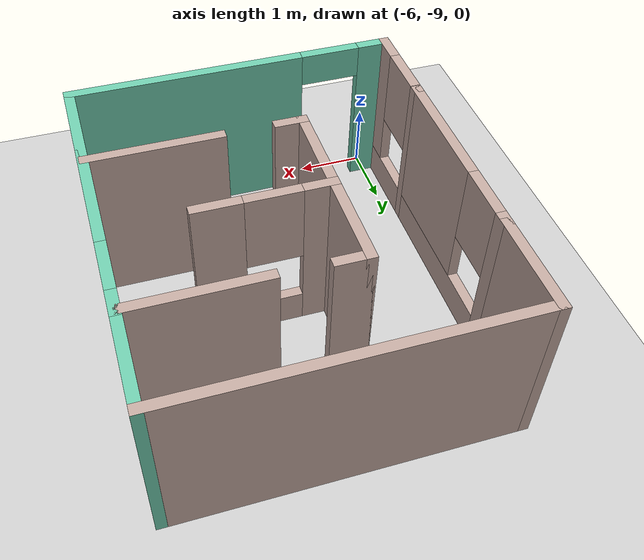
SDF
<sdf version="1.7">
 <world name="default">
  <model name="my_house">
   <link name="Wall_25">
    <pose>-3.07678 0.513938 0 0 -0 1.5708</pose>
    <visual name="Wall_25_Visual">
     <pose>0 0 1.25 0 -0 0</pose>
     <geometry><box><size>1.52313 0.15 2.5</size></box></geometry>
     <material>
      <script><uri>file://media/materials/scripts/gazebo.material</uri><name>Gazebo/Grey</name></script>
      <ambient>0.760784 0.662745 0.627451 1</ambient>
      <shader type="pixel"/>
     </material>
     <meta><layer>0</layer></meta>
    </visual>
    <collision name="Wall_25_Collision">
     <pose>0 0 1.25 0 -0 0</pose>
     <geometry><box><size>1.52313 0.15 2.5</size></box></geometry>
     <surface>
      <friction>
       <ode><mu>1</mu><mu2>1</mu2><fdir1>0 0 0</fdir1><slip1>0</slip1><slip2>0</slip2></ode>
       <torsional>
        <coefficient>1</coefficient>
        <patch_radius>0</patch_radius>
        <surface_radius>0</surface_radius>
        <use_patch_radius>1</use_patch_radius>
        <ode><slip>0</slip></ode>
       </torsional>
      </friction>
      <bounce><restitution_coefficient>0</restitution_coefficient><threshold>1e+06</threshold></bounce>
      <contact>
       <collide_without_contact>0</collide_without_contact>
       <collide_without_contact_bitmask>1</collide_without_contact_bitmask>
       <collide_bitmask>1</collide_bitmask>
       <ode>
        <soft_cfm>0</soft_cfm>
        <soft_erp>0.2</soft_erp>
        <kp>1e+13</kp>
        <kd>1</kd>
        <max_vel>0.01</max_vel>
        <min_depth>0</min_depth>
       </ode>
       <bullet>
        <split_impulse>1</split_impulse>
        <split_impulse_penetration_threshold>-0.01</split_impulse_penetration_threshold>
        <soft_cfm>0</soft_cfm>
        <soft_erp>0.2</soft_erp>
        <kp>1e+13</kp>
        <kd>1</kd>
       </bullet>
      </contact>
     </surface>
    </collision>
   </link>
   <link name="Wall_26">
    <pose>-0.651784 1.2005 0 0 -0 0</pose>
    <visual name="Wall_26_Visual">
     <pose>0 0 1.25 0 -0 0</pose>
     <geometry><box><size>5 0.15 2.5</size></box></geometry>
     <material>
      <script><uri>file://media/materials/scripts/gazebo.material</uri><name>Gazebo/Grey</name></script>
      <ambient>0.760784 0.662745 0.627451 1</ambient>
      <shader type="pixel"/>
     </material>
     <meta><layer>0</layer></meta>
    </visual>
    <collision name="Wall_26_Collision">
     <pose>0 0 1.25 0 -0 0</pose>
     <geometry><box><size>5 0.15 2.5</size></box></geometry>
     <surface>
      <friction>
       <ode><mu>1</mu><mu2>1</mu2><fdir1>0 0 0</fdir1><slip1>0</slip1><slip2>0</slip2></ode>
       <torsional>
        <coefficient>1</coefficient>
        <patch_radius>0</patch_radius>
        <surface_radius>0</surface_radius>
        <use_patch_radius>1</use_patch_radius>
        <ode><slip>0</slip></ode>
       </torsional>
      </friction>
      <bounce><restitution_coefficient>0</restitution_coefficient><threshold>1e+06</threshold></bounce>
      <contact>
       <collide_without_contact>0</collide_without_contact>
       <collide_without_contact_bitmask>1</collide_without_contact_bitmask>
       <collide_bitmask>1</collide_bitmask>
       <ode>
        <soft_cfm>0</soft_cfm>
        <soft_erp>0.2</soft_erp>
        <kp>1e+13</kp>
        <kd>1</kd>
        <max_vel>0.01</max_vel>
        <min_depth>0</min_depth>
       </ode>
       <bullet>
        <split_impulse>1</split_impulse>
        <split_impulse_penetration_threshold>-0.01</split_impulse_penetration_threshold>
        <soft_cfm>0</soft_cfm>
        <soft_erp>0.2</soft_erp>
        <kp>1e+13</kp>
        <kd>1</kd>
       </bullet>
      </contact>
     </surface>
    </collision>
   </link>
   <link name="Wall_27">
    <pose>1.77322 0.525503 0 0 0 -1.5708</pose>
    <visual name="Wall_27_Visual">
     <pose>0 0 1.25 0 -0 0</pose>
     <geometry><box><size>1.5 0.15 2.5</size></box></geometry>
     <material>
      <script><uri>file://media/materials/scripts/gazebo.material</uri><name>Gazebo/Grey</name></script>
      <ambient>0.435294 0.796078 0.67451 1</ambient>
      <shader type="pixel"/>
     </material>
     <meta><layer>0</layer></meta>
    </visual>
    <collision name="Wall_27_Collision">
     <pose>0 0 1.25 0 -0 0</pose>
     <geometry><box><size>1.5 0.15 2.5</size></box></geometry>
     <surface>
      <friction>
       <ode><mu>1</mu><mu2>1</mu2><fdir1>0 0 0</fdir1><slip1>0</slip1><slip2>0</slip2></ode>
       <torsional>
        <coefficient>1</coefficient>
        <patch_radius>0</patch_radius>
        <surface_radius>0</surface_radius>
        <use_patch_radius>1</use_patch_radius>
        <ode><slip>0</slip></ode>
       </torsional>
      </friction>
      <bounce><restitution_coefficient>0</restitution_coefficient><threshold>1e+06</threshold></bounce>
      <contact>
       <collide_without_contact>0</collide_without_contact>
       <collide_without_contact_bitmask>1</collide_without_contact_bitmask>
       <collide_bitmask>1</collide_bitmask>
       <ode>
        <soft_cfm>0</soft_cfm>
        <soft_erp>0.2</soft_erp>
        <kp>1e+13</kp>
        <kd>1</kd>
        <max_vel>0.01</max_vel>
        <min_depth>0</min_depth>
       </ode>
       <bullet>
        <split_impulse>1</split_impulse>
        <split_impulse_penetration_threshold>-0.01</split_impulse_penetration_threshold>
        <soft_cfm>0</soft_cfm>
        <soft_erp>0.2</soft_erp>
        <kp>1e+13</kp>
        <kd>1</kd>
       </bullet>
      </contact>
     </surface>
    </collision>
   </link>
   <link name="Wall_28">
    <pose>0.828995 -0.166969 0 0 -0 3.14159</pose>
    <visual name="Wall_28_Visual">
     <pose>0 0 1.25 0 -0 0</pose>
     <geometry><box><size>1.94 0.15 2.5</size></box></geometry>
     <material>
      <script><uri>file://media/materials/scripts/gazebo.material</uri><name>Gazebo/Grey</name></script>
      <ambient>0.760784 0.662745 0.627451 1</ambient>
      <shader type="pixel"/>
     </material>
     <meta><layer>0</layer></meta>
    </visual>
    <collision name="Wall_28_Collision">
     <pose>0 0 1.25 0 -0 0</pose>
     <geometry><box><size>1.94 0.15 2.5</size></box></geometry>
     <surface>
      <friction>
       <ode><mu>1</mu><mu2>1</mu2><fdir1>0 0 0</fdir1><slip1>0</slip1><slip2>0</slip2></ode>
       <torsional>
        <coefficient>1</coefficient>
        <patch_radius>0</patch_radius>
        <surface_radius>0</surface_radius>
        <use_patch_radius>1</use_patch_radius>
        <ode><slip>0</slip></ode>
       </torsional>
      </friction>
      <bounce><restitution_coefficient>0</restitution_coefficient><threshold>1e+06</threshold></bounce>
      <contact>
       <collide_without_contact>0</collide_without_contact>
       <collide_without_contact_bitmask>1</collide_without_contact_bitmask>
       <collide_bitmask>1</collide_bitmask>
       <ode>
        <soft_cfm>0</soft_cfm>
        <soft_erp>0.2</soft_erp>
        <kp>1e+13</kp>
        <kd>1</kd>
        <max_vel>0.01</max_vel>
        <min_depth>0</min_depth>
       </ode>
       <bullet>
        <split_impulse>1</split_impulse>
        <split_impulse_penetration_threshold>-0.01</split_impulse_penetration_threshold>
        <soft_cfm>0</soft_cfm>
        <soft_erp>0.2</soft_erp>
        <kp>1e+13</kp>
        <kd>1</kd>
       </bullet>
      </contact>
     </surface>
    </collision>
   </link>
   <link name="Wall_38">
    <pose>1.77322 -1.5745 0 0 0 -1.5708</pose>
    <visual name="Wall_38_Visual_1">
     <pose>0.203254 0 0.25 0 -0 0</pose>
     <geometry><box><size>2.59349 0.15 0.5</size></box></geometry>
     <material>
      <script><uri>file://media/materials/scripts/gazebo.material</uri><name>Gazebo/Grey</name></script>
      <ambient>0.435294 0.796078 0.67451 1</ambient>
      <shader type="pixel"/>
     </material>
     <meta><layer>0</layer></meta>
    </visual>
    <visual name="Wall_38_Visual_0">
     <pose>-1.29675 0 1.25 0 -0 0</pose>
     <geometry><box><size>0.406509 0.15 2.5</size></box></geometry>
     <material>
      <script><uri>file://media/materials/scripts/gazebo.material</uri><name>Gazebo/Grey</name></script>
      <ambient>0.435294 0.796078 0.67451 1</ambient>
      <shader type="pixel"/>
     </material>
     <meta><layer>0</layer></meta>
    </visual>
    <visual name="Wall_38_Visual_2">
     <pose>0.603254 0 1.5 0 -0 0</pose>
     <geometry><box><size>1.79349 0.15 2</size></box></geometry>
     <material>
      <script><uri>file://media/materials/scripts/gazebo.material</uri><name>Gazebo/Grey</name></script>
      <ambient>0.435294 0.796078 0.67451 1</ambient>
      <shader type="pixel"/>
     </material>
     <meta><layer>0</layer></meta>
    </visual>
    <visual name="Wall_38_Visual_3">
     <pose>-0.693491 0 1.9 0 -0 0</pose>
     <geometry><box><size>0.8 0.15 1.2</size></box></geometry>
     <material>
      <script><uri>file://media/materials/scripts/gazebo.material</uri><name>Gazebo/Grey</name></script>
      <ambient>0.435294 0.796078 0.67451 1</ambient>
      <shader type="pixel"/>
     </material>
     <meta><layer>0</layer></meta>
    </visual>
    <collision name="Wall_38_Collision_1">
     <pose>0.203254 0 0.25 0 -0 0</pose>
     <geometry><box><size>2.59349 0.15 0.5</size></box></geometry>
     <surface>
      <friction>
       <ode><mu>1</mu><mu2>1</mu2><fdir1>0 0 0</fdir1><slip1>0</slip1><slip2>0</slip2></ode>
       <torsional>
        <coefficient>1</coefficient>
        <patch_radius>0</patch_radius>
        <surface_radius>0</surface_radius>
        <use_patch_radius>1</use_patch_radius>
        <ode><slip>0</slip></ode>
       </torsional>
      </friction>
      <bounce><restitution_coefficient>0</restitution_coefficient><threshold>1e+06</threshold></bounce>
      <contact>
       <collide_without_contact>0</collide_without_contact>
       <collide_without_contact_bitmask>1</collide_without_contact_bitmask>
       <collide_bitmask>1</collide_bitmask>
       <ode>
        <soft_cfm>0</soft_cfm>
        <soft_erp>0.2</soft_erp>
        <kp>1e+13</kp>
        <kd>1</kd>
        <max_vel>0.01</max_vel>
        <min_depth>0</min_depth>
       </ode>
       <bullet>
        <split_impulse>1</split_impulse>
        <split_impulse_penetration_threshold>-0.01</split_impulse_penetration_threshold>
        <soft_cfm>0</soft_cfm>
        <soft_erp>0.2</soft_erp>
        <kp>1e+13</kp>
        <kd>1</kd>
       </bullet>
      </contact>
     </surface>
    </collision>
    <collision name="Wall_38_Collision_3">
     <pose>-0.693491 0 1.9 0 -0 0</pose>
     <geometry><box><size>0.8 0.15 1.2</size></box></geometry>
     <surface>
      <friction>
       <ode><mu>1</mu><mu2>1</mu2><fdir1>0 0 0</fdir1><slip1>0</slip1><slip2>0</slip2></ode>
       <torsional>
        <coefficient>1</coefficient>
        <patch_radius>0</patch_radius>
        <surface_radius>0</surface_radius>
        <use_patch_radius>1</use_patch_radius>
        <ode><slip>0</slip></ode>
       </torsional>
      </friction>
      <bounce><restitution_coefficient>0</restitution_coefficient><threshold>1e+06</threshold></bounce>
      <contact>
       <collide_without_contact>0</collide_without_contact>
       <collide_without_contact_bitmask>1</collide_without_contact_bitmask>
       <collide_bitmask>1</collide_bitmask>
       <ode>
        <soft_cfm>0</soft_cfm>
        <soft_erp>0.2</soft_erp>
        <kp>1e+13</kp>
        <kd>1</kd>
        <max_vel>0.01</max_vel>
        <min_depth>0</min_depth>
       </ode>
       <bullet>
        <split_impulse>1</split_impulse>
        <split_impulse_penetration_threshold>-0.01</split_impulse_penetration_threshold>
        <soft_cfm>0</soft_cfm>
        <soft_erp>0.2</soft_erp>
        <kp>1e+13</kp>
        <kd>1</kd>
       </bullet>
      </contact>
     </surface>
    </collision>
    <collision name="Wall_38_Collision_2">
     <pose>0.603254 0 1.5 0 -0 0</pose>
     <geometry><box><size>1.79349 0.15 2</size></box></geometry>
     <surface>
      <friction>
       <ode><mu>1</mu><mu2>1</mu2><fdir1>0 0 0</fdir1><slip1>0</slip1><slip2>0</slip2></ode>
       <torsional>
        <coefficient>1</coefficient>
        <patch_radius>0</patch_radius>
        <surface_radius>0</surface_radius>
        <use_patch_radius>1</use_patch_radius>
        <ode><slip>0</slip></ode>
       </torsional>
      </friction>
      <bounce><restitution_coefficient>0</restitution_coefficient><threshold>1e+06</threshold></bounce>
      <contact>
       <collide_without_contact>0</collide_without_contact>
       <collide_without_contact_bitmask>1</collide_without_contact_bitmask>
       <collide_bitmask>1</collide_bitmask>
       <ode>
        <soft_cfm>0</soft_cfm>
        <soft_erp>0.2</soft_erp>
        <kp>1e+13</kp>
        <kd>1</kd>
        <max_vel>0.01</max_vel>
        <min_depth>0</min_depth>
       </ode>
       <bullet>
        <split_impulse>1</split_impulse>
        <split_impulse_penetration_threshold>-0.01</split_impulse_penetration_threshold>
        <soft_cfm>0</soft_cfm>
        <soft_erp>0.2</soft_erp>
        <kp>1e+13</kp>
        <kd>1</kd>
       </bullet>
      </contact>
     </surface>
    </collision>
    <collision name="Wall_38_Collision_0">
     <pose>-1.29675 0 1.25 0 -0 0</pose>
     <geometry><box><size>0.406509 0.15 2.5</size></box></geometry>
     <surface>
      <friction>
       <ode><mu>1</mu><mu2>1</mu2><fdir1>0 0 0</fdir1><slip1>0</slip1><slip2>0</slip2></ode>
       <torsional>
        <coefficient>1</coefficient>
        <patch_radius>0</patch_radius>
        <surface_radius>0</surface_radius>
        <use_patch_radius>1</use_patch_radius>
        <ode><slip>0</slip></ode>
       </torsional>
      </friction>
      <bounce><restitution_coefficient>0</restitution_coefficient><threshold>1e+06</threshold></bounce>
      <contact>
       <collide_without_contact>0</collide_without_contact>
       <collide_without_contact_bitmask>1</collide_without_contact_bitmask>
       <collide_bitmask>1</collide_bitmask>
       <ode>
        <soft_cfm>0</soft_cfm>
        <soft_erp>0.2</soft_erp>
        <kp>1e+13</kp>
        <kd>1</kd>
        <max_vel>0.01</max_vel>
        <min_depth>0</min_depth>
       </ode>
       <bullet>
        <split_impulse>1</split_impulse>
        <split_impulse_penetration_threshold>-0.01</split_impulse_penetration_threshold>
        <soft_cfm>0</soft_cfm>
        <soft_erp>0.2</soft_erp>
        <kp>1e+13</kp>
        <kd>1</kd>
       </bullet>
      </contact>
     </surface>
    </collision>
   </link>
   <link name="Wall_40">
    <pose>-3.07678 -1.62076 0 0 0 -1.5708</pose>
    <visual name="Wall_40_Visual_2">
     <pose>0.519783 0 1.5 0 -0 0</pose>
     <geometry><box><size>1.96043 0.15 2</size></box></geometry>
     <material>
      <script><uri>file://media/materials/scripts/gazebo.material</uri><name>Gazebo/Grey</name></script>
      <ambient>0.760784 0.662745 0.627451 1</ambient>
      <shader type="pixel"/>
     </material>
     <meta><layer>0</layer></meta>
    </visual>
    <visual name="Wall_40_Visual_3">
     <pose>-0.860434 0 1.9 0 -0 0</pose>
     <geometry><box><size>0.8 0.15 1.2</size></box></geometry>
     <material>
      <script><uri>file://media/materials/scripts/gazebo.material</uri><name>Gazebo/Grey</name></script>
      <ambient>0.760784 0.662745 0.627451 1</ambient>
      <shader type="pixel"/>
     </material>
     <meta><layer>0</layer></meta>
    </visual>
    <visual name="Wall_40_Visual_0">
     <pose>-1.38022 0 1.25 0 -0 0</pose>
     <geometry><box><size>0.239566 0.15 2.5</size></box></geometry>
     <material>
      <script><uri>file://media/materials/scripts/gazebo.material</uri><name>Gazebo/Grey</name></script>
      <ambient>0.760784 0.662745 0.627451 1</ambient>
      <shader type="pixel"/>
     </material>
     <meta><layer>0</layer></meta>
    </visual>
    <visual name="Wall_40_Visual_1">
     <pose>0.119783 0 0.25 0 -0 0</pose>
     <geometry><box><size>2.76043 0.15 0.5</size></box></geometry>
     <material>
      <script><uri>file://media/materials/scripts/gazebo.material</uri><name>Gazebo/Grey</name></script>
      <ambient>0.760784 0.662745 0.627451 1</ambient>
      <shader type="pixel"/>
     </material>
     <meta><layer>0</layer></meta>
    </visual>
    <collision name="Wall_40_Collision_3">
     <pose>-0.860434 0 1.9 0 -0 0</pose>
     <geometry><box><size>0.8 0.15 1.2</size></box></geometry>
     <surface>
      <friction>
       <ode><mu>1</mu><mu2>1</mu2><fdir1>0 0 0</fdir1><slip1>0</slip1><slip2>0</slip2></ode>
       <torsional>
        <coefficient>1</coefficient>
        <patch_radius>0</patch_radius>
        <surface_radius>0</surface_radius>
        <use_patch_radius>1</use_patch_radius>
        <ode><slip>0</slip></ode>
       </torsional>
      </friction>
      <bounce><restitution_coefficient>0</restitution_coefficient><threshold>1e+06</threshold></bounce>
      <contact>
       <collide_without_contact>0</collide_without_contact>
       <collide_without_contact_bitmask>1</collide_without_contact_bitmask>
       <collide_bitmask>1</collide_bitmask>
       <ode>
        <soft_cfm>0</soft_cfm>
        <soft_erp>0.2</soft_erp>
        <kp>1e+13</kp>
        <kd>1</kd>
        <max_vel>0.01</max_vel>
        <min_depth>0</min_depth>
       </ode>
       <bullet>
        <split_impulse>1</split_impulse>
        <split_impulse_penetration_threshold>-0.01</split_impulse_penetration_threshold>
        <soft_cfm>0</soft_cfm>
        <soft_erp>0.2</soft_erp>
        <kp>1e+13</kp>
        <kd>1</kd>
       </bullet>
      </contact>
     </surface>
    </collision>
    <collision name="Wall_40_Collision_1">
     <pose>0.119783 0 0.25 0 -0 0</pose>
     <geometry><box><size>2.76043 0.15 0.5</size></box></geometry>
     <surface>
      <friction>
       <ode><mu>1</mu><mu2>1</mu2><fdir1>0 0 0</fdir1><slip1>0</slip1><slip2>0</slip2></ode>
       <torsional>
        <coefficient>1</coefficient>
        <patch_radius>0</patch_radius>
        <surface_radius>0</surface_radius>
        <use_patch_radius>1</use_patch_radius>
        <ode><slip>0</slip></ode>
       </torsional>
      </friction>
      <bounce><restitution_coefficient>0</restitution_coefficient><threshold>1e+06</threshold></bounce>
      <contact>
       <collide_without_contact>0</collide_without_contact>
       <collide_without_contact_bitmask>1</collide_without_contact_bitmask>
       <collide_bitmask>1</collide_bitmask>
       <ode>
        <soft_cfm>0</soft_cfm>
        <soft_erp>0.2</soft_erp>
        <kp>1e+13</kp>
        <kd>1</kd>
        <max_vel>0.01</max_vel>
        <min_depth>0</min_depth>
       </ode>
       <bullet>
        <split_impulse>1</split_impulse>
        <split_impulse_penetration_threshold>-0.01</split_impulse_penetration_threshold>
        <soft_cfm>0</soft_cfm>
        <soft_erp>0.2</soft_erp>
        <kp>1e+13</kp>
        <kd>1</kd>
       </bullet>
      </contact>
     </surface>
    </collision>
    <collision name="Wall_40_Collision_2">
     <pose>0.519783 0 1.5 0 -0 0</pose>
     <geometry><box><size>1.96043 0.15 2</size></box></geometry>
     <surface>
      <friction>
       <ode><mu>1</mu><mu2>1</mu2><fdir1>0 0 0</fdir1><slip1>0</slip1><slip2>0</slip2></ode>
       <torsional>
        <coefficient>1</coefficient>
        <patch_radius>0</patch_radius>
        <surface_radius>0</surface_radius>
        <use_patch_radius>1</use_patch_radius>
        <ode><slip>0</slip></ode>
       </torsional>
      </friction>
      <bounce><restitution_coefficient>0</restitution_coefficient><threshold>1e+06</threshold></bounce>
      <contact>
       <collide_without_contact>0</collide_without_contact>
       <collide_without_contact_bitmask>1</collide_without_contact_bitmask>
       <collide_bitmask>1</collide_bitmask>
       <ode>
        <soft_cfm>0</soft_cfm>
        <soft_erp>0.2</soft_erp>
        <kp>1e+13</kp>
        <kd>1</kd>
        <max_vel>0.01</max_vel>
        <min_depth>0</min_depth>
       </ode>
       <bullet>
        <split_impulse>1</split_impulse>
        <split_impulse_penetration_threshold>-0.01</split_impulse_penetration_threshold>
        <soft_cfm>0</soft_cfm>
        <soft_erp>0.2</soft_erp>
        <kp>1e+13</kp>
        <kd>1</kd>
       </bullet>
      </contact>
     </surface>
    </collision>
    <collision name="Wall_40_Collision_0">
     <pose>-1.38022 0 1.25 0 -0 0</pose>
     <geometry><box><size>0.239566 0.15 2.5</size></box></geometry>
     <surface>
      <friction>
       <ode><mu>1</mu><mu2>1</mu2><fdir1>0 0 0</fdir1><slip1>0</slip1><slip2>0</slip2></ode>
       <torsional>
        <coefficient>1</coefficient>
        <patch_radius>0</patch_radius>
        <surface_radius>0</surface_radius>
        <use_patch_radius>1</use_patch_radius>
        <ode><slip>0</slip></ode>
       </torsional>
      </friction>
      <bounce><restitution_coefficient>0</restitution_coefficient><threshold>1e+06</threshold></bounce>
      <contact>
       <collide_without_contact>0</collide_without_contact>
       <collide_without_contact_bitmask>1</collide_without_contact_bitmask>
       <collide_bitmask>1</collide_bitmask>
       <ode>
        <soft_cfm>0</soft_cfm>
        <soft_erp>0.2</soft_erp>
        <kp>1e+13</kp>
        <kd>1</kd>
        <max_vel>0.01</max_vel>
        <min_depth>0</min_depth>
       </ode>
       <bullet>
        <split_impulse>1</split_impulse>
        <split_impulse_penetration_threshold>-0.01</split_impulse_penetration_threshold>
        <soft_cfm>0</soft_cfm>
        <soft_erp>0.2</soft_erp>
        <kp>1e+13</kp>
        <kd>1</kd>
       </bullet>
      </contact>
     </surface>
    </collision>
   </link>
   <link name="Wall_42">
    <pose>-0.651784 -4.3495 0 0 -0 0</pose>
    <visual name="Wall_42_Visual_2">
     <pose>-1.51739 0 2.25 0 -0 0</pose>
     <geometry><box><size>0.9 0.15 0.5</size></box></geometry>
     <material>
      <script><uri>file://media/materials/scripts/gazebo.material</uri><name>Gazebo/Grey</name></script>
      <ambient>0.435294 0.796078 0.67451 1</ambient>
      <shader type="pixel"/>
     </material>
     <meta><layer>0</layer></meta>
    </visual>
    <visual name="Wall_42_Visual_1">
     <pose>0.716304 0 1.25 0 -0 0</pose>
     <geometry><box><size>3.56739 0.15 2.5</size></box></geometry>
     <material>
      <script><uri>file://media/materials/scripts/gazebo.material</uri><name>Gazebo/Grey</name></script>
      <ambient>0.435294 0.796078 0.67451 1</ambient>
      <shader type="pixel"/>
     </material>
     <meta><layer>0</layer></meta>
    </visual>
    <visual name="Wall_42_Visual_0">
     <pose>-2.2337 0 1.25 0 -0 0</pose>
     <geometry><box><size>0.532607 0.15 2.5</size></box></geometry>
     <material>
      <script><uri>file://media/materials/scripts/gazebo.material</uri><name>Gazebo/Grey</name></script>
      <ambient>0.435294 0.796078 0.67451 1</ambient>
      <shader type="pixel"/>
     </material>
     <meta><layer>0</layer></meta>
    </visual>
    <collision name="Wall_42_Collision_2">
     <pose>-1.51739 0 2.25 0 -0 0</pose>
     <geometry><box><size>0.9 0.15 0.5</size></box></geometry>
     <surface>
      <friction>
       <ode><mu>1</mu><mu2>1</mu2><fdir1>0 0 0</fdir1><slip1>0</slip1><slip2>0</slip2></ode>
       <torsional>
        <coefficient>1</coefficient>
        <patch_radius>0</patch_radius>
        <surface_radius>0</surface_radius>
        <use_patch_radius>1</use_patch_radius>
        <ode><slip>0</slip></ode>
       </torsional>
      </friction>
      <bounce><restitution_coefficient>0</restitution_coefficient><threshold>1e+06</threshold></bounce>
      <contact>
       <collide_without_contact>0</collide_without_contact>
       <collide_without_contact_bitmask>1</collide_without_contact_bitmask>
       <collide_bitmask>1</collide_bitmask>
       <ode>
        <soft_cfm>0</soft_cfm>
        <soft_erp>0.2</soft_erp>
        <kp>1e+13</kp>
        <kd>1</kd>
        <max_vel>0.01</max_vel>
        <min_depth>0</min_depth>
       </ode>
       <bullet>
        <split_impulse>1</split_impulse>
        <split_impulse_penetration_threshold>-0.01</split_impulse_penetration_threshold>
        <soft_cfm>0</soft_cfm>
        <soft_erp>0.2</soft_erp>
        <kp>1e+13</kp>
        <kd>1</kd>
       </bullet>
      </contact>
     </surface>
    </collision>
    <collision name="Wall_42_Collision_1">
     <pose>0.716304 0 1.25 0 -0 0</pose>
     <geometry><box><size>3.56739 0.15 2.5</size></box></geometry>
     <surface>
      <friction>
       <ode><mu>1</mu><mu2>1</mu2><fdir1>0 0 0</fdir1><slip1>0</slip1><slip2>0</slip2></ode>
       <torsional>
        <coefficient>1</coefficient>
        <patch_radius>0</patch_radius>
        <surface_radius>0</surface_radius>
        <use_patch_radius>1</use_patch_radius>
        <ode><slip>0</slip></ode>
       </torsional>
      </friction>
      <bounce><restitution_coefficient>0</restitution_coefficient><threshold>1e+06</threshold></bounce>
      <contact>
       <collide_without_contact>0</collide_without_contact>
       <collide_without_contact_bitmask>1</collide_without_contact_bitmask>
       <collide_bitmask>1</collide_bitmask>
       <ode>
        <soft_cfm>0</soft_cfm>
        <soft_erp>0.2</soft_erp>
        <kp>1e+13</kp>
        <kd>1</kd>
        <max_vel>0.01</max_vel>
        <min_depth>0</min_depth>
       </ode>
       <bullet>
        <split_impulse>1</split_impulse>
        <split_impulse_penetration_threshold>-0.01</split_impulse_penetration_threshold>
        <soft_cfm>0</soft_cfm>
        <soft_erp>0.2</soft_erp>
        <kp>1e+13</kp>
        <kd>1</kd>
       </bullet>
      </contact>
     </surface>
    </collision>
    <collision name="Wall_42_Collision_0">
     <pose>-2.2337 0 1.25 0 -0 0</pose>
     <geometry><box><size>0.532607 0.15 2.5</size></box></geometry>
     <surface>
      <friction>
       <ode><mu>1</mu><mu2>1</mu2><fdir1>0 0 0</fdir1><slip1>0</slip1><slip2>0</slip2></ode>
       <torsional>
        <coefficient>1</coefficient>
        <patch_radius>0</patch_radius>
        <surface_radius>0</surface_radius>
        <use_patch_radius>1</use_patch_radius>
        <ode><slip>0</slip></ode>
       </torsional>
      </friction>
      <bounce><restitution_coefficient>0</restitution_coefficient><threshold>1e+06</threshold></bounce>
      <contact>
       <collide_without_contact>0</collide_without_contact>
       <collide_without_contact_bitmask>1</collide_without_contact_bitmask>
       <collide_bitmask>1</collide_bitmask>
       <ode>
        <soft_cfm>0</soft_cfm>
        <soft_erp>0.2</soft_erp>
        <kp>1e+13</kp>
        <kd>1</kd>
        <max_vel>0.01</max_vel>
        <min_depth>0</min_depth>
       </ode>
       <bullet>
        <split_impulse>1</split_impulse>
        <split_impulse_penetration_threshold>-0.01</split_impulse_penetration_threshold>
        <soft_cfm>0</soft_cfm>
        <soft_erp>0.2</soft_erp>
        <kp>1e+13</kp>
        <kd>1</kd>
       </bullet>
      </contact>
     </surface>
    </collision>
   </link>
   <link name="Wall_43">
    <pose>1.77322 -3.6745 0 0 -0 1.5708</pose>
    <visual name="Wall_43_Visual">
     <pose>0 0 1.25 0 -0 0</pose>
     <geometry><box><size>1.5 0.15 2.5</size></box></geometry>
     <material>
      <script><uri>file://media/materials/scripts/gazebo.material</uri><name>Gazebo/Grey</name></script>
      <ambient>0.435294 0.796078 0.67451 1</ambient>
      <shader type="pixel"/>
     </material>
     <meta><layer>0</layer></meta>
    </visual>
    <collision name="Wall_43_Collision">
     <pose>0 0 1.25 0 -0 0</pose>
     <geometry><box><size>1.5 0.15 2.5</size></box></geometry>
     <surface>
      <friction>
       <ode><mu>1</mu><mu2>1</mu2><fdir1>0 0 0</fdir1><slip1>0</slip1><slip2>0</slip2></ode>
       <torsional>
        <coefficient>1</coefficient>
        <patch_radius>0</patch_radius>
        <surface_radius>0</surface_radius>
        <use_patch_radius>1</use_patch_radius>
        <ode><slip>0</slip></ode>
       </torsional>
      </friction>
      <bounce><restitution_coefficient>0</restitution_coefficient><threshold>1e+06</threshold></bounce>
      <contact>
       <collide_without_contact>0</collide_without_contact>
       <collide_without_contact_bitmask>1</collide_without_contact_bitmask>
       <collide_bitmask>1</collide_bitmask>
       <ode>
        <soft_cfm>0</soft_cfm>
        <soft_erp>0.2</soft_erp>
        <kp>1e+13</kp>
        <kd>1</kd>
        <max_vel>0.01</max_vel>
        <min_depth>0</min_depth>
       </ode>
       <bullet>
        <split_impulse>1</split_impulse>
        <split_impulse_penetration_threshold>-0.01</split_impulse_penetration_threshold>
        <soft_cfm>0</soft_cfm>
        <soft_erp>0.2</soft_erp>
        <kp>1e+13</kp>
        <kd>1</kd>
       </bullet>
      </contact>
     </surface>
    </collision>
   </link>
   <link name="Wall_46">
    <pose>0.825346 -2.8495 0 0 -0 0</pose>
    <visual name="Wall_46_Visual">
     <pose>0 0 1.25 0 -0 0</pose>
     <geometry><box><size>2 0.15 2.5</size></box></geometry>
     <material>
      <script><uri>file://media/materials/scripts/gazebo.material</uri><name>Gazebo/Grey</name></script>
      <ambient>0.760784 0.662745 0.627451 1</ambient>
      <shader type="pixel"/>
     </material>
     <meta><layer>0</layer></meta>
    </visual>
    <collision name="Wall_46_Collision">
     <pose>0 0 1.25 0 -0 0</pose>
     <geometry><box><size>2 0.15 2.5</size></box></geometry>
     <surface>
      <friction>
       <ode><mu>1</mu><mu2>1</mu2><fdir1>0 0 0</fdir1><slip1>0</slip1><slip2>0</slip2></ode>
       <torsional>
        <coefficient>1</coefficient>
        <patch_radius>0</patch_radius>
        <surface_radius>0</surface_radius>
        <use_patch_radius>1</use_patch_radius>
        <ode><slip>0</slip></ode>
       </torsional>
      </friction>
      <bounce><restitution_coefficient>0</restitution_coefficient><threshold>1e+06</threshold></bounce>
      <contact>
       <collide_without_contact>0</collide_without_contact>
       <collide_without_contact_bitmask>1</collide_without_contact_bitmask>
       <collide_bitmask>1</collide_bitmask>
       <ode>
        <soft_cfm>0</soft_cfm>
        <soft_erp>0.2</soft_erp>
        <kp>1e+13</kp>
        <kd>1</kd>
        <max_vel>0.01</max_vel>
        <min_depth>0</min_depth>
       </ode>
       <bullet>
        <split_impulse>1</split_impulse>
        <split_impulse_penetration_threshold>-0.01</split_impulse_penetration_threshold>
        <soft_cfm>0</soft_cfm>
        <soft_erp>0.2</soft_erp>
        <kp>1e+13</kp>
        <kd>1</kd>
       </bullet>
      </contact>
     </surface>
    </collision>
   </link>
   <link name="Wall_52">
    <pose>-1.07178 -0.149497 0 0 -0 3.14159</pose>
    <visual name="Wall_52_Visual">
     <pose>0 0 1.25 0 -0 0</pose>
     <geometry><box><size>0.56 0.15 2.5</size></box></geometry>
     <material>
      <script><uri>file://media/materials/scripts/gazebo.material</uri><name>Gazebo/Grey</name></script>
      <ambient>0.760784 0.662745 0.627451 1</ambient>
      <shader type="pixel"/>
     </material>
     <meta><layer>0</layer></meta>
    </visual>
    <collision name="Wall_52_Collision">
     <pose>0 0 1.25 0 -0 0</pose>
     <geometry><box><size>0.56 0.15 2.5</size></box></geometry>
     <surface>
      <friction>
       <ode><mu>1</mu><mu2>1</mu2><fdir1>0 0 0</fdir1><slip1>0</slip1><slip2>0</slip2></ode>
       <torsional>
        <coefficient>1</coefficient>
        <patch_radius>0</patch_radius>
        <surface_radius>0</surface_radius>
        <use_patch_radius>1</use_patch_radius>
        <ode><slip>0</slip></ode>
       </torsional>
      </friction>
      <bounce><restitution_coefficient>0</restitution_coefficient><threshold>1e+06</threshold></bounce>
      <contact>
       <collide_without_contact>0</collide_without_contact>
       <collide_without_contact_bitmask>1</collide_without_contact_bitmask>
       <collide_bitmask>1</collide_bitmask>
       <ode>
        <soft_cfm>0</soft_cfm>
        <soft_erp>0.2</soft_erp>
        <kp>1e+13</kp>
        <kd>1</kd>
        <max_vel>0.01</max_vel>
        <min_depth>0</min_depth>
       </ode>
       <bullet>
        <split_impulse>1</split_impulse>
        <split_impulse_penetration_threshold>-0.01</split_impulse_penetration_threshold>
        <soft_cfm>0</soft_cfm>
        <soft_erp>0.2</soft_erp>
        <kp>1e+13</kp>
        <kd>1</kd>
       </bullet>
      </contact>
     </surface>
    </collision>
   </link>
   <link name="Wall_53">
    <pose>-1.27678 -0.824497 0 0 0 -1.5708</pose>
    <visual name="Wall_53_Visual">
     <pose>0 0 1.25 0 -0 0</pose>
     <geometry><box><size>1.5 0.15 2.5</size></box></geometry>
     <material>
      <script><uri>file://media/materials/scripts/gazebo.material</uri><name>Gazebo/Grey</name></script>
      <ambient>0.760784 0.662745 0.627451 1</ambient>
      <shader type="pixel"/>
     </material>
     <meta><layer>0</layer></meta>
    </visual>
    <collision name="Wall_53_Collision">
     <pose>0 0 1.25 0 -0 0</pose>
     <geometry><box><size>1.5 0.15 2.5</size></box></geometry>
     <surface>
      <friction>
       <ode><mu>1</mu><mu2>1</mu2><fdir1>0 0 0</fdir1><slip1>0</slip1><slip2>0</slip2></ode>
       <torsional>
        <coefficient>1</coefficient>
        <patch_radius>0</patch_radius>
        <surface_radius>0</surface_radius>
        <use_patch_radius>1</use_patch_radius>
        <ode><slip>0</slip></ode>
       </torsional>
      </friction>
      <bounce><restitution_coefficient>0</restitution_coefficient><threshold>1e+06</threshold></bounce>
      <contact>
       <collide_without_contact>0</collide_without_contact>
       <collide_without_contact_bitmask>1</collide_without_contact_bitmask>
       <collide_bitmask>1</collide_bitmask>
       <ode>
        <soft_cfm>0</soft_cfm>
        <soft_erp>0.2</soft_erp>
        <kp>1e+13</kp>
        <kd>1</kd>
        <max_vel>0.01</max_vel>
        <min_depth>0</min_depth>
       </ode>
       <bullet>
        <split_impulse>1</split_impulse>
        <split_impulse_penetration_threshold>-0.01</split_impulse_penetration_threshold>
        <soft_cfm>0</soft_cfm>
        <soft_erp>0.2</soft_erp>
        <kp>1e+13</kp>
        <kd>1</kd>
       </bullet>
      </contact>
     </surface>
    </collision>
   </link>
   <link name="Wall_54">
    <pose>-0.351784 -1.4995 0 0 -0 0</pose>
    <visual name="Wall_54_Visual_0">
     <pose>-0.753214 0 1.25 0 -0 0</pose>
     <geometry><box><size>0.493573 0.15 2.5</size></box></geometry>
     <material>
      <script><uri>file://media/materials/scripts/gazebo.material</uri><name>Gazebo/Grey</name></script>
      <ambient>0.760784 0.662745 0.627451 1</ambient>
      <shader type="pixel"/>
     </material>
     <meta><layer>0</layer></meta>
    </visual>
    <visual name="Wall_54_Visual_2">
     <pose>0.646786 0 1.5 0 -0 0</pose>
     <geometry><box><size>0.706427 0.15 2</size></box></geometry>
     <material>
      <script><uri>file://media/materials/scripts/gazebo.material</uri><name>Gazebo/Grey</name></script>
      <ambient>0.760784 0.662745 0.627451 1</ambient>
      <shader type="pixel"/>
     </material>
     <meta><layer>0</layer></meta>
    </visual>
    <visual name="Wall_54_Visual_1">
     <pose>0.246786 0 0.25 0 -0 0</pose>
     <geometry><box><size>1.50643 0.15 0.5</size></box></geometry>
     <material>
      <script><uri>file://media/materials/scripts/gazebo.material</uri><name>Gazebo/Grey</name></script>
      <ambient>0.760784 0.662745 0.627451 1</ambient>
      <shader type="pixel"/>
     </material>
     <meta><layer>0</layer></meta>
    </visual>
    <visual name="Wall_54_Visual_3">
     <pose>-0.106427 0 1.9 0 -0 0</pose>
     <geometry><box><size>0.8 0.15 1.2</size></box></geometry>
     <material>
      <script><uri>file://media/materials/scripts/gazebo.material</uri><name>Gazebo/Grey</name></script>
      <ambient>0.760784 0.662745 0.627451 1</ambient>
      <shader type="pixel"/>
     </material>
     <meta><layer>0</layer></meta>
    </visual>
    <collision name="Wall_54_Collision_0">
     <pose>-0.753214 0 1.25 0 -0 0</pose>
     <geometry><box><size>0.493573 0.15 2.5</size></box></geometry>
     <surface>
      <friction>
       <ode><mu>1</mu><mu2>1</mu2><fdir1>0 0 0</fdir1><slip1>0</slip1><slip2>0</slip2></ode>
       <torsional>
        <coefficient>1</coefficient>
        <patch_radius>0</patch_radius>
        <surface_radius>0</surface_radius>
        <use_patch_radius>1</use_patch_radius>
        <ode><slip>0</slip></ode>
       </torsional>
      </friction>
      <bounce><restitution_coefficient>0</restitution_coefficient><threshold>1e+06</threshold></bounce>
      <contact>
       <collide_without_contact>0</collide_without_contact>
       <collide_without_contact_bitmask>1</collide_without_contact_bitmask>
       <collide_bitmask>1</collide_bitmask>
       <ode>
        <soft_cfm>0</soft_cfm>
        <soft_erp>0.2</soft_erp>
        <kp>1e+13</kp>
        <kd>1</kd>
        <max_vel>0.01</max_vel>
        <min_depth>0</min_depth>
       </ode>
       <bullet>
        <split_impulse>1</split_impulse>
        <split_impulse_penetration_threshold>-0.01</split_impulse_penetration_threshold>
        <soft_cfm>0</soft_cfm>
        <soft_erp>0.2</soft_erp>
        <kp>1e+13</kp>
        <kd>1</kd>
       </bullet>
      </contact>
     </surface>
    </collision>
    <collision name="Wall_54_Collision_3">
     <pose>-0.106427 0 1.9 0 -0 0</pose>
     <geometry><box><size>0.8 0.15 1.2</size></box></geometry>
     <surface>
      <friction>
       <ode><mu>1</mu><mu2>1</mu2><fdir1>0 0 0</fdir1><slip1>0</slip1><slip2>0</slip2></ode>
       <torsional>
        <coefficient>1</coefficient>
        <patch_radius>0</patch_radius>
        <surface_radius>0</surface_radius>
        <use_patch_radius>1</use_patch_radius>
        <ode><slip>0</slip></ode>
       </torsional>
      </friction>
      <bounce><restitution_coefficient>0</restitution_coefficient><threshold>1e+06</threshold></bounce>
      <contact>
       <collide_without_contact>0</collide_without_contact>
       <collide_without_contact_bitmask>1</collide_without_contact_bitmask>
       <collide_bitmask>1</collide_bitmask>
       <ode>
        <soft_cfm>0</soft_cfm>
        <soft_erp>0.2</soft_erp>
        <kp>1e+13</kp>
        <kd>1</kd>
        <max_vel>0.01</max_vel>
        <min_depth>0</min_depth>
       </ode>
       <bullet>
        <split_impulse>1</split_impulse>
        <split_impulse_penetration_threshold>-0.01</split_impulse_penetration_threshold>
        <soft_cfm>0</soft_cfm>
        <soft_erp>0.2</soft_erp>
        <kp>1e+13</kp>
        <kd>1</kd>
       </bullet>
      </contact>
     </surface>
    </collision>
    <collision name="Wall_54_Collision_2">
     <pose>0.646786 0 1.5 0 -0 0</pose>
     <geometry><box><size>0.706427 0.15 2</size></box></geometry>
     <surface>
      <friction>
       <ode><mu>1</mu><mu2>1</mu2><fdir1>0 0 0</fdir1><slip1>0</slip1><slip2>0</slip2></ode>
       <torsional>
        <coefficient>1</coefficient>
        <patch_radius>0</patch_radius>
        <surface_radius>0</surface_radius>
        <use_patch_radius>1</use_patch_radius>
        <ode><slip>0</slip></ode>
       </torsional>
      </friction>
      <bounce><restitution_coefficient>0</restitution_coefficient><threshold>1e+06</threshold></bounce>
      <contact>
       <collide_without_contact>0</collide_without_contact>
       <collide_without_contact_bitmask>1</collide_without_contact_bitmask>
       <collide_bitmask>1</collide_bitmask>
       <ode>
        <soft_cfm>0</soft_cfm>
        <soft_erp>0.2</soft_erp>
        <kp>1e+13</kp>
        <kd>1</kd>
        <max_vel>0.01</max_vel>
        <min_depth>0</min_depth>
       </ode>
       <bullet>
        <split_impulse>1</split_impulse>
        <split_impulse_penetration_threshold>-0.01</split_impulse_penetration_threshold>
        <soft_cfm>0</soft_cfm>
        <soft_erp>0.2</soft_erp>
        <kp>1e+13</kp>
        <kd>1</kd>
       </bullet>
      </contact>
     </surface>
    </collision>
    <collision name="Wall_54_Collision_1">
     <pose>0.246786 0 0.25 0 -0 0</pose>
     <geometry><box><size>1.50643 0.15 0.5</size></box></geometry>
     <surface>
      <friction>
       <ode><mu>1</mu><mu2>1</mu2><fdir1>0 0 0</fdir1><slip1>0</slip1><slip2>0</slip2></ode>
       <torsional>
        <coefficient>1</coefficient>
        <patch_radius>0</patch_radius>
        <surface_radius>0</surface_radius>
        <use_patch_radius>1</use_patch_radius>
        <ode><slip>0</slip></ode>
       </torsional>
      </friction>
      <bounce><restitution_coefficient>0</restitution_coefficient><threshold>1e+06</threshold></bounce>
      <contact>
       <collide_without_contact>0</collide_without_contact>
       <collide_without_contact_bitmask>1</collide_without_contact_bitmask>
       <collide_bitmask>1</collide_bitmask>
       <ode>
        <soft_cfm>0</soft_cfm>
        <soft_erp>0.2</soft_erp>
        <kp>1e+13</kp>
        <kd>1</kd>
        <max_vel>0.01</max_vel>
        <min_depth>0</min_depth>
       </ode>
       <bullet>
        <split_impulse>1</split_impulse>
        <split_impulse_penetration_threshold>-0.01</split_impulse_penetration_threshold>
        <soft_cfm>0</soft_cfm>
        <soft_erp>0.2</soft_erp>
        <kp>1e+13</kp>
        <kd>1</kd>
       </bullet>
      </contact>
     </surface>
    </collision>
   </link>
   <link name="Wall_56">
    <pose>-1.27678 -2.1745 0 0 0 -1.5708</pose>
    <visual name="Wall_56_Visual">
     <pose>0 0 1.25 0 -0 0</pose>
     <geometry><box><size>1.5 0.15 2.5</size></box></geometry>
     <material>
      <script><uri>file://media/materials/scripts/gazebo.material</uri><name>Gazebo/Grey</name></script>
      <ambient>0.760784 0.662745 0.627451 1</ambient>
      <shader type="pixel"/>
     </material>
     <meta><layer>0</layer></meta>
    </visual>
    <collision name="Wall_56_Collision">
     <pose>0 0 1.25 0 -0 0</pose>
     <geometry><box><size>1.5 0.15 2.5</size></box></geometry>
     <surface>
      <friction>
       <ode><mu>1</mu><mu2>1</mu2><fdir1>0 0 0</fdir1><slip1>0</slip1><slip2>0</slip2></ode>
       <torsional>
        <coefficient>1</coefficient>
        <patch_radius>0</patch_radius>
        <surface_radius>0</surface_radius>
        <use_patch_radius>1</use_patch_radius>
        <ode><slip>0</slip></ode>
       </torsional>
      </friction>
      <bounce><restitution_coefficient>0</restitution_coefficient><threshold>1e+06</threshold></bounce>
      <contact>
       <collide_without_contact>0</collide_without_contact>
       <collide_without_contact_bitmask>1</collide_without_contact_bitmask>
       <collide_bitmask>1</collide_bitmask>
       <ode>
        <soft_cfm>0</soft_cfm>
        <soft_erp>0.2</soft_erp>
        <kp>1e+13</kp>
        <kd>1</kd>
        <max_vel>0.01</max_vel>
        <min_depth>0</min_depth>
       </ode>
       <bullet>
        <split_impulse>1</split_impulse>
        <split_impulse_penetration_threshold>-0.01</split_impulse_penetration_threshold>
        <soft_cfm>0</soft_cfm>
        <soft_erp>0.2</soft_erp>
        <kp>1e+13</kp>
        <kd>1</kd>
       </bullet>
      </contact>
     </surface>
    </collision>
   </link>
   <link name="Wall_57">
    <pose>-1.10178 -2.8495 0 0 -0 0</pose>
    <visual name="Wall_57_Visual">
     <pose>0 0 1.25 0 -0 0</pose>
     <geometry><box><size>0.5 0.15 2.5</size></box></geometry>
     <material>
      <script><uri>file://media/materials/scripts/gazebo.material</uri><name>Gazebo/Grey</name></script>
      <ambient>0.760784 0.662745 0.627451 1</ambient>
      <shader type="pixel"/>
     </material>
     <meta><layer>0</layer></meta>
    </visual>
    <collision name="Wall_57_Collision">
     <pose>0 0 1.25 0 -0 0</pose>
     <geometry><box><size>0.5 0.15 2.5</size></box></geometry>
     <surface>
      <friction>
       <ode><mu>1</mu><mu2>1</mu2><fdir1>0 0 0</fdir1><slip1>0</slip1><slip2>0</slip2></ode>
       <torsional>
        <coefficient>1</coefficient>
        <patch_radius>0</patch_radius>
        <surface_radius>0</surface_radius>
        <use_patch_radius>1</use_patch_radius>
        <ode><slip>0</slip></ode>
       </torsional>
      </friction>
      <bounce><restitution_coefficient>0</restitution_coefficient><threshold>1e+06</threshold></bounce>
      <contact>
       <collide_without_contact>0</collide_without_contact>
       <collide_without_contact_bitmask>1</collide_without_contact_bitmask>
       <collide_bitmask>1</collide_bitmask>
       <ode>
        <soft_cfm>0</soft_cfm>
        <soft_erp>0.2</soft_erp>
        <kp>1e+13</kp>
        <kd>1</kd>
        <max_vel>0.01</max_vel>
        <min_depth>0</min_depth>
       </ode>
       <bullet>
        <split_impulse>1</split_impulse>
        <split_impulse_penetration_threshold>-0.01</split_impulse_penetration_threshold>
        <soft_cfm>0</soft_cfm>
        <soft_erp>0.2</soft_erp>
        <kp>1e+13</kp>
        <kd>1</kd>
       </bullet>
      </contact>
     </surface>
    </collision>
   </link>
   <link name="Wall_60">
    <pose>-3.07678 -3.69763 0 0 0 -1.5708</pose>
    <visual name="Wall_60_Visual_0">
     <pose>-0.646647 0 1.25 0 -0 0</pose>
     <geometry><box><size>0.160445 0.15 2.5</size></box></geometry>
     <material>
      <script><uri>file://media/materials/scripts/gazebo.material</uri><name>Gazebo/Grey</name></script>
      <ambient>0.760784 0.662745 0.627451 1</ambient>
      <shader type="pixel"/>
     </material>
     <meta><layer>0</layer></meta>
    </visual>
    <visual name="Wall_60_Visual_1">
     <pose>0.080223 0 0.25 0 -0 0</pose>
     <geometry><box><size>1.29329 0.15 0.5</size></box></geometry>
     <material>
      <script><uri>file://media/materials/scripts/gazebo.material</uri><name>Gazebo/Grey</name></script>
      <ambient>0.760784 0.662745 0.627451 1</ambient>
      <shader type="pixel"/>
     </material>
     <meta><layer>0</layer></meta>
    </visual>
    <visual name="Wall_60_Visual_2">
     <pose>0.480223 0 1.5 0 -0 0</pose>
     <geometry><box><size>0.493294 0.15 2</size></box></geometry>
     <material>
      <script><uri>file://media/materials/scripts/gazebo.material</uri><name>Gazebo/Grey</name></script>
      <ambient>0.760784 0.662745 0.627451 1</ambient>
      <shader type="pixel"/>
     </material>
     <meta><layer>0</layer></meta>
    </visual>
    <visual name="Wall_60_Visual_3">
     <pose>-0.166424 0 1.9 0 -0 0</pose>
     <geometry><box><size>0.8 0.15 1.2</size></box></geometry>
     <material>
      <script><uri>file://media/materials/scripts/gazebo.material</uri><name>Gazebo/Grey</name></script>
      <ambient>0.760784 0.662745 0.627451 1</ambient>
      <shader type="pixel"/>
     </material>
     <meta><layer>0</layer></meta>
    </visual>
    <collision name="Wall_60_Collision_0">
     <pose>-0.646647 0 1.25 0 -0 0</pose>
     <geometry><box><size>0.160445 0.15 2.5</size></box></geometry>
     <surface>
      <friction>
       <ode><mu>1</mu><mu2>1</mu2><fdir1>0 0 0</fdir1><slip1>0</slip1><slip2>0</slip2></ode>
       <torsional>
        <coefficient>1</coefficient>
        <patch_radius>0</patch_radius>
        <surface_radius>0</surface_radius>
        <use_patch_radius>1</use_patch_radius>
        <ode><slip>0</slip></ode>
       </torsional>
      </friction>
      <bounce><restitution_coefficient>0</restitution_coefficient><threshold>1e+06</threshold></bounce>
      <contact>
       <collide_without_contact>0</collide_without_contact>
       <collide_without_contact_bitmask>1</collide_without_contact_bitmask>
       <collide_bitmask>1</collide_bitmask>
       <ode>
        <soft_cfm>0</soft_cfm>
        <soft_erp>0.2</soft_erp>
        <kp>1e+13</kp>
        <kd>1</kd>
        <max_vel>0.01</max_vel>
        <min_depth>0</min_depth>
       </ode>
       <bullet>
        <split_impulse>1</split_impulse>
        <split_impulse_penetration_threshold>-0.01</split_impulse_penetration_threshold>
        <soft_cfm>0</soft_cfm>
        <soft_erp>0.2</soft_erp>
        <kp>1e+13</kp>
        <kd>1</kd>
       </bullet>
      </contact>
     </surface>
    </collision>
    <collision name="Wall_60_Collision_1">
     <pose>0.080223 0 0.25 0 -0 0</pose>
     <geometry><box><size>1.29329 0.15 0.5</size></box></geometry>
     <surface>
      <friction>
       <ode><mu>1</mu><mu2>1</mu2><fdir1>0 0 0</fdir1><slip1>0</slip1><slip2>0</slip2></ode>
       <torsional>
        <coefficient>1</coefficient>
        <patch_radius>0</patch_radius>
        <surface_radius>0</surface_radius>
        <use_patch_radius>1</use_patch_radius>
        <ode><slip>0</slip></ode>
       </torsional>
      </friction>
      <bounce><restitution_coefficient>0</restitution_coefficient><threshold>1e+06</threshold></bounce>
      <contact>
       <collide_without_contact>0</collide_without_contact>
       <collide_without_contact_bitmask>1</collide_without_contact_bitmask>
       <collide_bitmask>1</collide_bitmask>
       <ode>
        <soft_cfm>0</soft_cfm>
        <soft_erp>0.2</soft_erp>
        <kp>1e+13</kp>
        <kd>1</kd>
        <max_vel>0.01</max_vel>
        <min_depth>0</min_depth>
       </ode>
       <bullet>
        <split_impulse>1</split_impulse>
        <split_impulse_penetration_threshold>-0.01</split_impulse_penetration_threshold>
        <soft_cfm>0</soft_cfm>
        <soft_erp>0.2</soft_erp>
        <kp>1e+13</kp>
        <kd>1</kd>
       </bullet>
      </contact>
     </surface>
    </collision>
    <collision name="Wall_60_Collision_2">
     <pose>0.480223 0 1.5 0 -0 0</pose>
     <geometry><box><size>0.493294 0.15 2</size></box></geometry>
     <surface>
      <friction>
       <ode><mu>1</mu><mu2>1</mu2><fdir1>0 0 0</fdir1><slip1>0</slip1><slip2>0</slip2></ode>
       <torsional>
        <coefficient>1</coefficient>
        <patch_radius>0</patch_radius>
        <surface_radius>0</surface_radius>
        <use_patch_radius>1</use_patch_radius>
        <ode><slip>0</slip></ode>
       </torsional>
      </friction>
      <bounce><restitution_coefficient>0</restitution_coefficient><threshold>1e+06</threshold></bounce>
      <contact>
       <collide_without_contact>0</collide_without_contact>
       <collide_without_contact_bitmask>1</collide_without_contact_bitmask>
       <collide_bitmask>1</collide_bitmask>
       <ode>
        <soft_cfm>0</soft_cfm>
        <soft_erp>0.2</soft_erp>
        <kp>1e+13</kp>
        <kd>1</kd>
        <max_vel>0.01</max_vel>
        <min_depth>0</min_depth>
       </ode>
       <bullet>
        <split_impulse>1</split_impulse>
        <split_impulse_penetration_threshold>-0.01</split_impulse_penetration_threshold>
        <soft_cfm>0</soft_cfm>
        <soft_erp>0.2</soft_erp>
        <kp>1e+13</kp>
        <kd>1</kd>
       </bullet>
      </contact>
     </surface>
    </collision>
    <collision name="Wall_60_Collision_3">
     <pose>-0.166424 0 1.9 0 -0 0</pose>
     <geometry><box><size>0.8 0.15 1.2</size></box></geometry>
     <surface>
      <friction>
       <ode><mu>1</mu><mu2>1</mu2><fdir1>0 0 0</fdir1><slip1>0</slip1><slip2>0</slip2></ode>
       <torsional>
        <coefficient>1</coefficient>
        <patch_radius>0</patch_radius>
        <surface_radius>0</surface_radius>
        <use_patch_radius>1</use_patch_radius>
        <ode><slip>0</slip></ode>
       </torsional>
      </friction>
      <bounce><restitution_coefficient>0</restitution_coefficient><threshold>1e+06</threshold></bounce>
      <contact>
       <collide_without_contact>0</collide_without_contact>
       <collide_without_contact_bitmask>1</collide_without_contact_bitmask>
       <collide_bitmask>1</collide_bitmask>
       <ode>
        <soft_cfm>0</soft_cfm>
        <soft_erp>0.2</soft_erp>
        <kp>1e+13</kp>
        <kd>1</kd>
        <max_vel>0.01</max_vel>
        <min_depth>0</min_depth>
       </ode>
       <bullet>
        <split_impulse>1</split_impulse>
        <split_impulse_penetration_threshold>-0.01</split_impulse_penetration_threshold>
        <soft_cfm>0</soft_cfm>
        <soft_erp>0.2</soft_erp>
        <kp>1e+13</kp>
        <kd>1</kd>
       </bullet>
      </contact>
     </surface>
    </collision>
   </link>
   <static>1</static>
   <pose>-3.15178 -4.4245 0 0 -0 0</pose>
  </model>
  <model name="ground_plane">
   <static>1</static>
   <link name="link">
    <collision name="collision">
     <geometry><plane><normal>0 0 1</normal><size>100 100</size></plane></geometry>
     <surface>
      <contact><collide_bitmask>65535</collide_bitmask></contact>
      <friction><ode><mu>100</mu><mu2>50</mu2></ode></friction>
     </surface>
    </collision>
    <visual name="visual">
     <cast_shadows>0</cast_shadows>
     <geometry><plane><normal>0 0 1</normal><size>100 100</size></plane></geometry>
     <material>
      <script><uri>file://media/materials/scripts/gazebo.material</uri><name>Gazebo/Grey</name></script>
     </material>
    </visual>
   </link>
  </model>
 </world>
</sdf>
